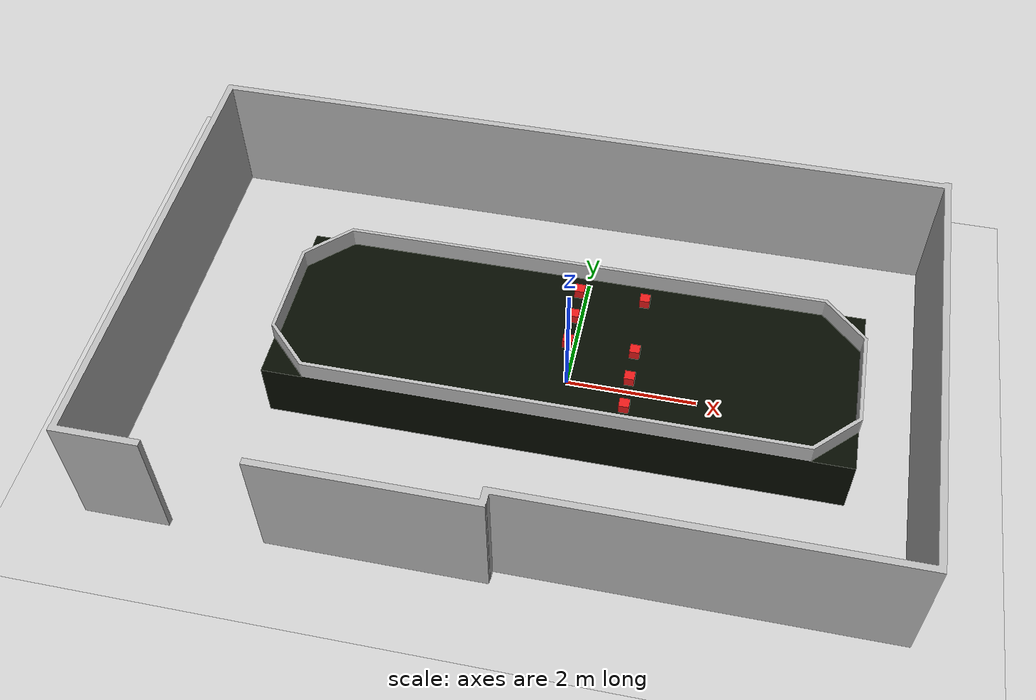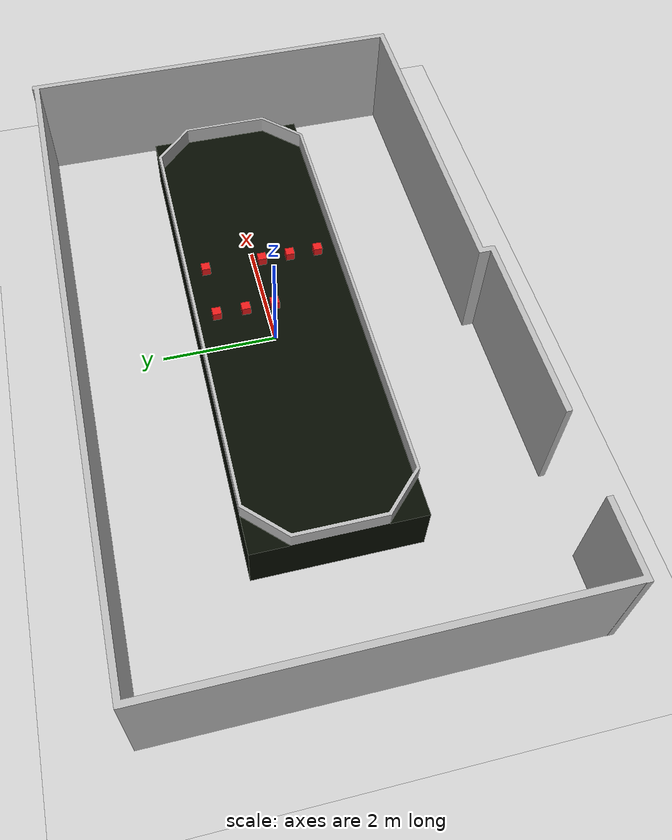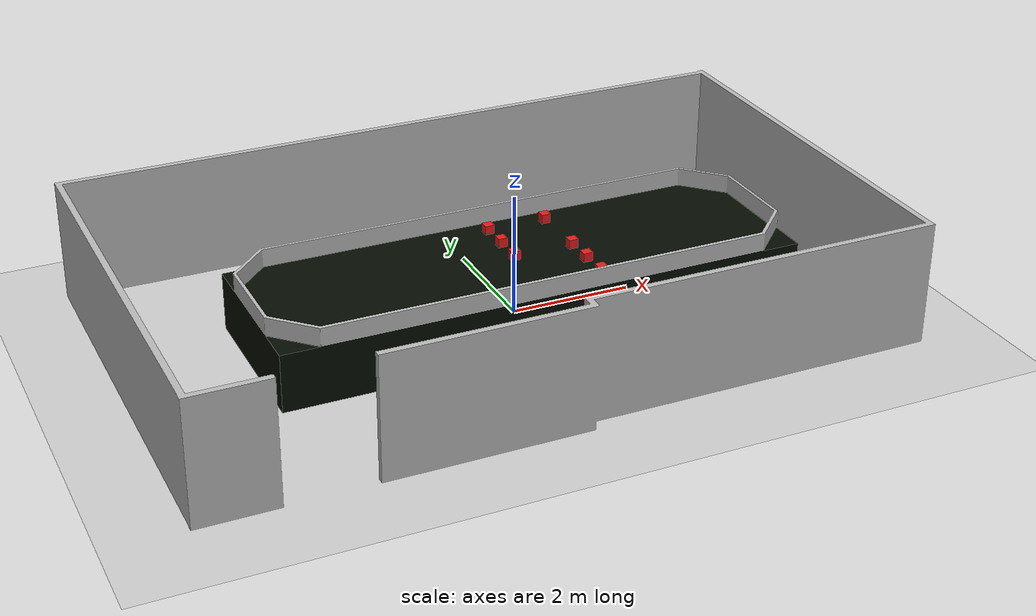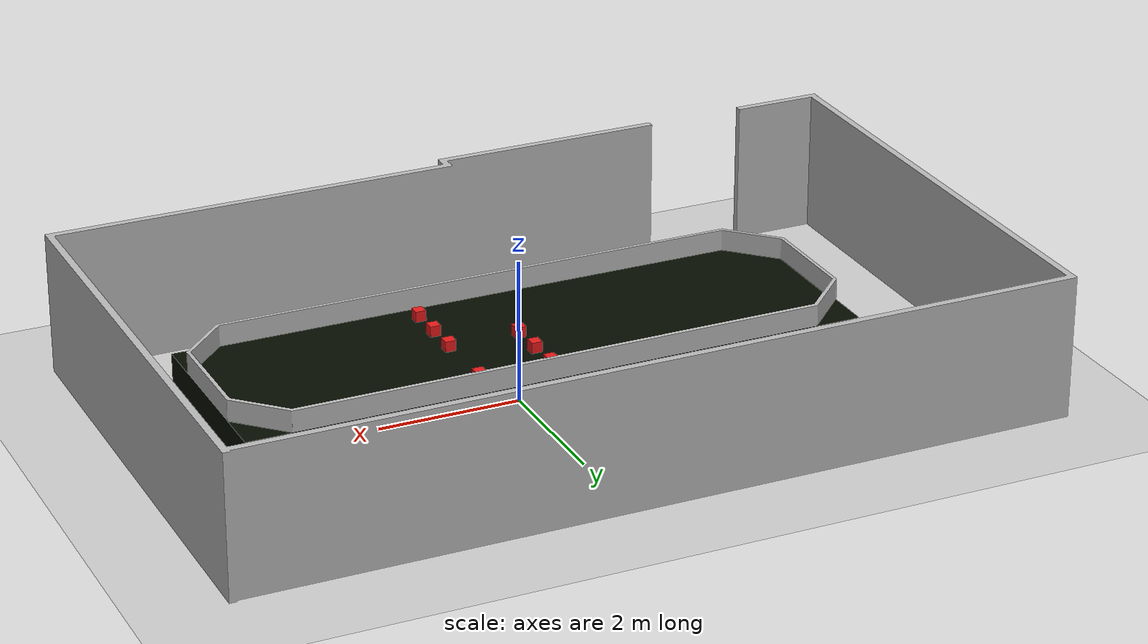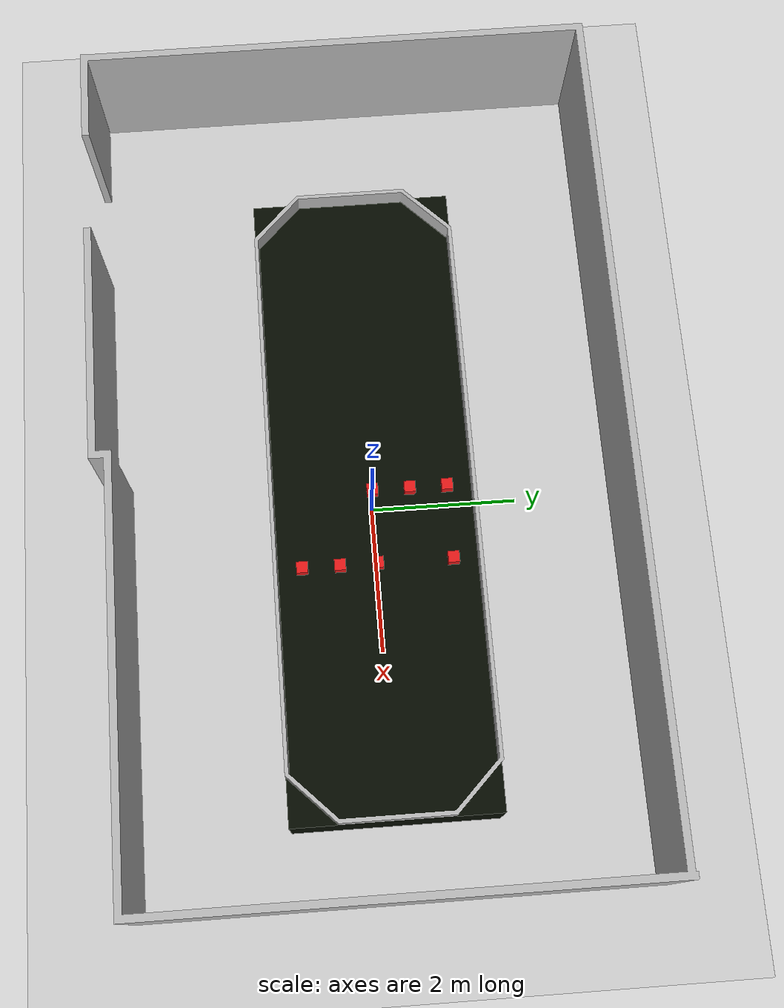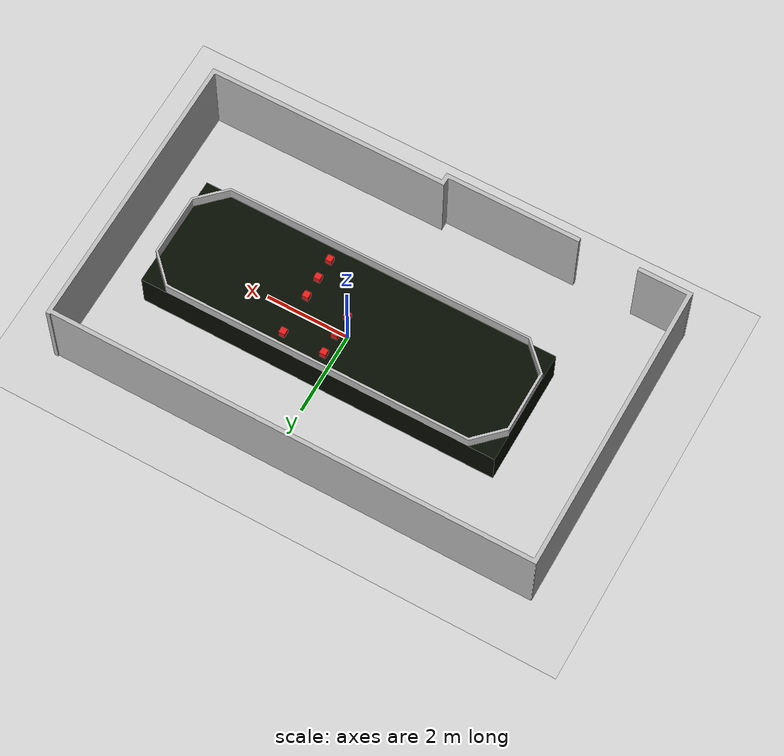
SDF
<sdf version="1.7">
 <world name="default">
  <spherical_coordinates><heading_deg>180</heading_deg></spherical_coordinates>
  <light name="sun" type="directional">
   <pose>0 0 10 0 -0 0</pose>
   <diffuse>0.8 0.8 0.8 1</diffuse>
   <specular>0.2 0.2 0.2 1</specular>
   <attenuation>
    <range>1000</range>
    <constant>0.9</constant>
    <linear>0.01</linear>
    <quadratic>0.001</quadratic>
   </attenuation>
   <direction>-0.5 0.1 -0.9</direction>
   <spot><inner_angle>0</inner_angle><outer_angle>0</outer_angle><falloff>0</falloff></spot>
  </light>
  <model name="ground_plane">
   <static>1</static>
   <link name="link">
    <collision name="collision">
     <geometry><plane><normal>0 0 1</normal><size>100 100</size></plane></geometry>
     <surface>
      <contact><collide_bitmask>65535</collide_bitmask></contact>
      <friction><ode><mu>100</mu><mu2>50</mu2></ode></friction>
     </surface>
    </collision>
    <visual name="visual">
     <cast_shadows>0</cast_shadows>
     <geometry><plane><normal>0 0 1</normal><size>100 100</size></plane></geometry>
     <material>
      <script><uri>file://media/materials/scripts/gazebo.material</uri><name>Gazebo/Grey</name></script>
     </material>
    </visual>
   </link>
  </model>
  <gravity>0 0 -9.8</gravity>
  <magnetic_field>6e-06 2.3e-05 -4.2e-05</magnetic_field>
  <atmosphere type="adiabatic"/>
  <physics type="ode">
   <max_step_size>0.001</max_step_size>
   <real_time_factor>1</real_time_factor>
   <real_time_update_rate>1000</real_time_update_rate>
  </physics>
  <scene><ambient>0.4 0.4 0.4 1</ambient><background>0.7 0.7 0.7 1</background><shadows>1</shadows></scene>
  <audio><device>default</device></audio>
  <spherical_coordinates>
   <surface_model>EARTH_WGS84</surface_model>
   <latitude_deg>0</latitude_deg>
   <longitude_deg>0</longitude_deg>
   <elevation>0</elevation>
   <heading_deg>0</heading_deg>
  </spherical_coordinates>
  <model name="G210_polygon">
   <static>1</static>
   <link name="link">
    <visual name="visual">
     <geometry><mesh><uri>model://G210_polygon/meshes/G210_polygon.dae</uri></mesh></geometry>
    </visual>
    <collision name="collision">
     <geometry><mesh><uri>model://G210_polygon/meshes/G210_polygon.dae</uri></mesh></geometry>
    </collision>
   </link>
   <pose>0 0 0 1.57079 -0 0</pose>
  </model>
  <model name="minibox">
   <static>0</static>
   <link name="link">
    <inertial>
     <mass>0.3375</mass>
     <inertia>
      <ixx>0.0012656</ixx>
      <iyy>0.0012656</iyy>
      <izz>0.0012656</izz>
      <ixy>0</ixy>
      <ixz>0</ixz>
      <iyz>0</iyz>
     </inertia>
    </inertial>
    <visual name="visual">
     <geometry><box><size>0.15 0.15 0.15</size></box></geometry>
     <material>
      <ambient>0.9 0.1 0.1 1</ambient>
      <diffuse>0.9 0.1 0.1 1</diffuse>
      <specular>0.1 0.1 0.1 1</specular>
     </material>
    </visual>
    <collision name="collision">
     <geometry><box><size>0.15 0.15 0.15</size></box></geometry>
     <surface>
      <friction><ode><mu>0.8</mu><mu2>0.8</mu2></ode></friction>
      <bounce><restitution_coefficient>0.3</restitution_coefficient></bounce>
     </surface>
    </collision>
   </link>
   <pose>1 1 1.02499 -6e-06 -0 -0</pose>
  </model>
  <model name="minibox_0">
   <static>0</static>
   <link name="link">
    <inertial>
     <mass>0.3375</mass>
     <inertia>
      <ixx>0.0012656</ixx>
      <iyy>0.0012656</iyy>
      <izz>0.0012656</izz>
      <ixy>0</ixy>
      <ixz>0</ixz>
      <iyz>0</iyz>
     </inertia>
    </inertial>
    <visual name="visual">
     <geometry><box><size>0.15 0.15 0.15</size></box></geometry>
     <material>
      <ambient>0.9 0.1 0.1 1</ambient>
      <diffuse>0.9 0.1 0.1 1</diffuse>
      <specular>0.1 0.1 0.1 1</specular>
     </material>
    </visual>
    <collision name="collision">
     <geometry><box><size>0.15 0.15 0.15</size></box></geometry>
     <surface>
      <friction><ode><mu>0.8</mu><mu2>0.8</mu2></ode></friction>
      <bounce><restitution_coefficient>0.3</restitution_coefficient></bounce>
     </surface>
    </collision>
   </link>
   <pose>1 -0.999999 1.02501 -6e-06 -0 -0</pose>
  </model>
  <model name="minibox_1">
   <static>0</static>
   <link name="link">
    <inertial>
     <mass>0.3375</mass>
     <inertia>
      <ixx>0.0012656</ixx>
      <iyy>0.0012656</iyy>
      <izz>0.0012656</izz>
      <ixy>0</ixy>
      <ixz>0</ixz>
      <iyz>0</iyz>
     </inertia>
    </inertial>
    <visual name="visual">
     <geometry><box><size>0.15 0.15 0.15</size></box></geometry>
     <material>
      <ambient>0.9 0.1 0.1 1</ambient>
      <diffuse>0.9 0.1 0.1 1</diffuse>
      <specular>0.1 0.1 0.1 1</specular>
     </material>
    </visual>
    <collision name="collision">
     <geometry><box><size>0.15 0.15 0.15</size></box></geometry>
     <surface>
      <friction><ode><mu>0.8</mu><mu2>0.8</mu2></ode></friction>
      <bounce><restitution_coefficient>0.3</restitution_coefficient></bounce>
     </surface>
    </collision>
   </link>
   <pose>0 5e-06 1.02499 -1.8e-05 6e-06 4e-06</pose>
  </model>
  <model name="minibox_2">
   <static>0</static>
   <link name="link">
    <inertial>
     <mass>0.3375</mass>
     <inertia>
      <ixx>0.0012656</ixx>
      <iyy>0.0012656</iyy>
      <izz>0.0012656</izz>
      <ixy>0</ixy>
      <ixz>0</ixz>
      <iyz>0</iyz>
     </inertia>
    </inertial>
    <visual name="visual">
     <geometry><box><size>0.15 0.15 0.15</size></box></geometry>
     <material>
      <ambient>0.9 0.1 0.1 1</ambient>
      <diffuse>0.9 0.1 0.1 1</diffuse>
      <specular>0.1 0.1 0.1 1</specular>
     </material>
    </visual>
    <collision name="collision">
     <geometry><box><size>0.15 0.15 0.15</size></box></geometry>
     <surface>
      <friction><ode><mu>0.8</mu><mu2>0.8</mu2></ode></friction>
      <bounce><restitution_coefficient>0.3</restitution_coefficient></bounce>
     </surface>
    </collision>
   </link>
   <pose>1 1e-06 1.025 -6e-06 -0 -0</pose>
  </model>
  <model name="minibox_3">
   <static>0</static>
   <link name="link">
    <inertial>
     <mass>0.3375</mass>
     <inertia>
      <ixx>0.0012656</ixx>
      <iyy>0.0012656</iyy>
      <izz>0.0012656</izz>
      <ixy>0</ixy>
      <ixz>0</ixz>
      <iyz>0</iyz>
     </inertia>
    </inertial>
    <visual name="visual">
     <geometry><box><size>0.15 0.15 0.15</size></box></geometry>
     <material>
      <ambient>0.9 0.1 0.1 1</ambient>
      <diffuse>0.9 0.1 0.1 1</diffuse>
      <specular>0.1 0.1 0.1 1</specular>
     </material>
    </visual>
    <collision name="collision">
     <geometry><box><size>0.15 0.15 0.15</size></box></geometry>
     <surface>
      <friction><ode><mu>0.8</mu><mu2>0.8</mu2></ode></friction>
      <bounce><restitution_coefficient>0.3</restitution_coefficient></bounce>
     </surface>
    </collision>
   </link>
   <pose>1 -0.499999 1.025 -6e-06 -0 0</pose>
  </model>
  <model name="minibox_4">
   <static>0</static>
   <link name="link">
    <inertial>
     <mass>0.3375</mass>
     <inertia>
      <ixx>0.0012656</ixx>
      <iyy>0.0012656</iyy>
      <izz>0.0012656</izz>
      <ixy>0</ixy>
      <ixz>0</ixz>
      <iyz>0</iyz>
     </inertia>
    </inertial>
    <visual name="visual">
     <geometry><box><size>0.15 0.15 0.15</size></box></geometry>
     <material>
      <ambient>0.9 0.1 0.1 1</ambient>
      <diffuse>0.9 0.1 0.1 1</diffuse>
      <specular>0.1 0.1 0.1 1</specular>
     </material>
    </visual>
    <collision name="collision">
     <geometry><box><size>0.15 0.15 0.15</size></box></geometry>
     <surface>
      <friction><ode><mu>0.8</mu><mu2>0.8</mu2></ode></friction>
      <bounce><restitution_coefficient>0.3</restitution_coefficient></bounce>
     </surface>
    </collision>
   </link>
   <pose>-0 1 1.02499 -6e-06 -0 0</pose>
  </model>
  <model name="minibox_5">
   <static>0</static>
   <link name="link">
    <inertial>
     <mass>0.3375</mass>
     <inertia>
      <ixx>0.0012656</ixx>
      <iyy>0.0012656</iyy>
      <izz>0.0012656</izz>
      <ixy>0</ixy>
      <ixz>0</ixz>
      <iyz>0</iyz>
     </inertia>
    </inertial>
    <visual name="visual">
     <geometry><box><size>0.15 0.15 0.15</size></box></geometry>
     <material>
      <ambient>0.9 0.1 0.1 1</ambient>
      <diffuse>0.9 0.1 0.1 1</diffuse>
      <specular>0.1 0.1 0.1 1</specular>
     </material>
    </visual>
    <collision name="collision">
     <geometry><box><size>0.15 0.15 0.15</size></box></geometry>
     <surface>
      <friction><ode><mu>0.8</mu><mu2>0.8</mu2></ode></friction>
      <bounce><restitution_coefficient>0.3</restitution_coefficient></bounce>
     </surface>
    </collision>
   </link>
   <pose>-0 0.500001 1.02499 -6e-06 -0 0</pose>
  </model>
 </world>
</sdf>
